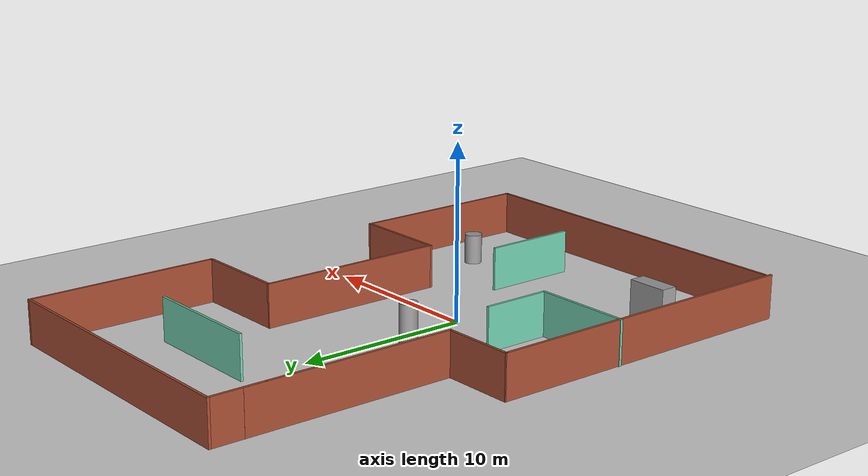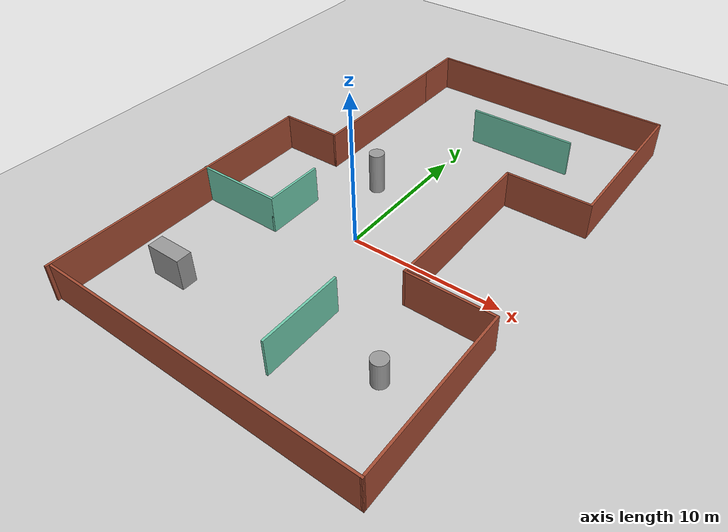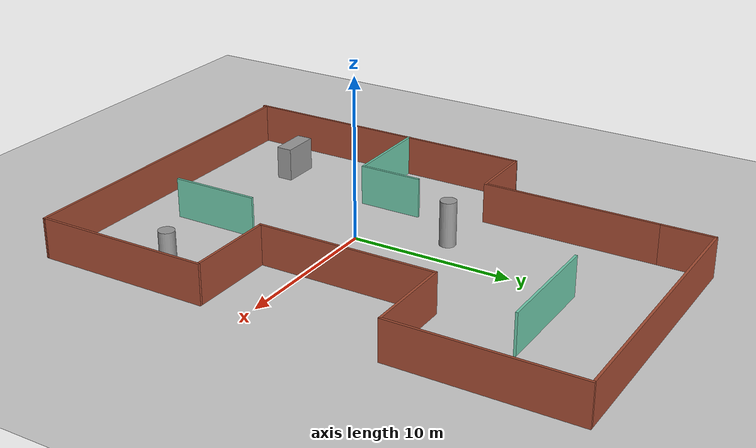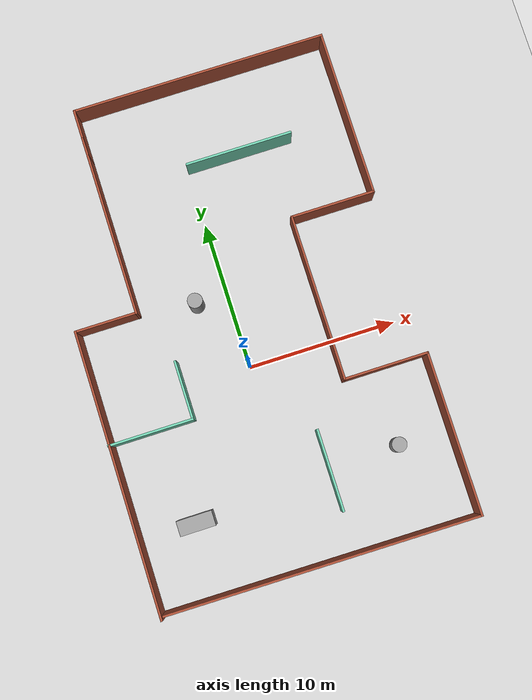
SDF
<sdf version="1.7">
 <world name="default">
  <light name="sun" type="directional">
   <pose>0 0 10 0 -0 0</pose>
   <diffuse>0.8 0.8 0.8 1</diffuse>
   <specular>0.2 0.2 0.2 1</specular>
   <attenuation>
    <range>1000</range>
    <constant>0.9</constant>
    <linear>0.01</linear>
    <quadratic>0.001</quadratic>
   </attenuation>
   <direction>-0.5 0.1 -0.9</direction>
   <spot><inner_angle>0</inner_angle><outer_angle>0</outer_angle><falloff>0</falloff></spot>
  </light>
  <model name="ground_plane">
   <static>1</static>
   <link name="link">
    <collision name="collision">
     <geometry><plane><normal>0 0 1</normal><size>100 100</size></plane></geometry>
     <surface>
      <contact><collide_bitmask>65535</collide_bitmask></contact>
      <friction><ode><mu>100</mu><mu2>50</mu2></ode></friction>
     </surface>
    </collision>
    <visual name="visual">
     <cast_shadows>0</cast_shadows>
     <geometry><plane><normal>0 0 1</normal><size>100 100</size></plane></geometry>
     <material>
      <script><uri>file://media/materials/scripts/gazebo.material</uri><name>Gazebo/Grey</name></script>
     </material>
    </visual>
   </link>
  </model>
  <gravity>0 0 -9.8</gravity>
  <magnetic_field>6e-06 2.3e-05 -4.2e-05</magnetic_field>
  <atmosphere type="adiabatic"/>
  <physics type="ode">
   <max_step_size>0.001</max_step_size>
   <real_time_factor>1</real_time_factor>
   <real_time_update_rate>1000</real_time_update_rate>
  </physics>
  <scene><ambient>0.4 0.4 0.4 1</ambient><background>0.7 0.7 0.7 1</background><shadows>1</shadows></scene>
  <spherical_coordinates>
   <surface_model>EARTH_WGS84</surface_model>
   <latitude_deg>0</latitude_deg>
   <longitude_deg>0</longitude_deg>
   <elevation>0</elevation>
   <heading_deg>0</heading_deg>
  </spherical_coordinates>
  <model name="bigHouse2">
   <pose>0.51957 2.93001 0 0 -0 0</pose>
   <link name="Wall_0">
    <collision name="Wall_0_Collision">
     <geometry><box><size>19.1938 0.15 2.5</size></box></geometry>
     <pose>0 0 1.25 0 -0 0</pose>
    </collision>
    <visual name="Wall_0_Visual">
     <pose>0 0 1.25 0 -0 0</pose>
     <geometry><box><size>19.1938 0.15 2.5</size></box></geometry>
     <material>
      <script><uri>file://media/materials/scripts/gazebo.material</uri><name>Gazebo/Bricks</name></script>
      <ambient>1 1 1 1</ambient>
     </material>
     <meta><layer>0</layer></meta>
    </visual>
    <pose>-10.5903 -7.02327 0 0 -0 1.56949</pose>
   </link>
   <link name="Wall_10">
    <collision name="Wall_10_Collision">
     <geometry><box><size>11.25 0.15 2.5</size></box></geometry>
     <pose>0 0 1.25 0 -0 0</pose>
    </collision>
    <visual name="Wall_10_Visual">
     <pose>0 0 1.25 0 -0 0</pose>
     <geometry><box><size>11.25 0.15 2.5</size></box></geometry>
     <material>
      <script><uri>file://media/materials/scripts/gazebo.material</uri><name>Gazebo/Bricks</name></script>
      <ambient>1 1 1 1</ambient>
     </material>
     <meta><layer>0</layer></meta>
    </visual>
    <pose>5.02426 -0.104723 0 0 -0 1.5708</pose>
   </link>
   <link name="Wall_11">
    <collision name="Wall_11_Collision">
     <geometry><box><size>5.75 0.15 2.5</size></box></geometry>
     <pose>0 0 1.25 0 -0 0</pose>
    </collision>
    <visual name="Wall_11_Visual">
     <pose>0 0 1.25 0 -0 0</pose>
     <geometry><box><size>5.75 0.15 2.5</size></box></geometry>
     <material>
      <script><uri>file://media/materials/scripts/gazebo.material</uri><name>Gazebo/Bricks</name></script>
      <ambient>1 1 1 1</ambient>
     </material>
     <meta><layer>0</layer></meta>
    </visual>
    <pose>7.82426 5.44528 0 0 -0 0</pose>
   </link>
   <link name="Wall_14">
    <collision name="Wall_14_Collision">
     <geometry><box><size>11.25 0.15 2.5</size></box></geometry>
     <pose>0 0 1.25 0 -0 0</pose>
    </collision>
    <visual name="Wall_14_Visual">
     <pose>0 0 1.25 0 -0 0</pose>
     <geometry><box><size>11.25 0.15 2.5</size></box></geometry>
     <material>
      <script><uri>file://media/materials/scripts/gazebo.material</uri><name>Gazebo/Bricks</name></script>
      <ambient>1 1 1 1</ambient>
     </material>
     <meta><layer>0</layer></meta>
    </visual>
    <pose>10.6243 10.9953 0 0 -0 1.5708</pose>
   </link>
   <link name="Wall_17">
    <collision name="Wall_17_Collision">
     <geometry><box><size>4.25 0.15 2.5</size></box></geometry>
     <pose>0 0 1.25 0 -0 0</pose>
    </collision>
    <visual name="Wall_17_Visual">
     <pose>0 0 1.25 0 -0 0</pose>
     <geometry><box><size>4.25 0.15 2.5</size></box></geometry>
     <material>
      <script><uri>file://media/materials/scripts/gazebo.material</uri><name>Gazebo/Bricks</name></script>
      <ambient>1 1 1 1</ambient>
     </material>
     <meta><layer>0</layer></meta>
    </visual>
    <pose>-8.52784 2.49865 0 0 -0 0</pose>
   </link>
   <link name="Wall_18">
    <collision name="Wall_18_Collision">
     <geometry><box><size>12.25 0.15 2.5</size></box></geometry>
     <pose>0 0 1.25 0 -0 0</pose>
    </collision>
    <visual name="Wall_18_Visual">
     <pose>0 0 1.25 0 -0 0</pose>
     <geometry><box><size>12.25 0.15 2.5</size></box></geometry>
     <material>
      <script><uri>file://media/materials/scripts/gazebo.material</uri><name>Gazebo/Bricks</name></script>
      <ambient>1 1 1 1</ambient>
     </material>
     <meta><layer>0</layer></meta>
    </visual>
    <pose>-6.47784 8.54865 0 0 -0 1.5708</pose>
   </link>
   <link name="Wall_20">
    <collision name="Wall_20_Collision">
     <geometry><box><size>17.25 0.15 2.5</size></box></geometry>
     <pose>0 0 1.25 0 -0 0</pose>
    </collision>
    <visual name="Wall_20_Visual">
     <pose>0 0 1.25 0 -0 0</pose>
     <geometry><box><size>17.25 0.15 2.5</size></box></geometry>
     <material>
      <script><uri>file://media/materials/scripts/gazebo.material</uri><name>Gazebo/Bricks</name></script>
      <ambient>1 1 1 1</ambient>
     </material>
     <meta><layer>0</layer></meta>
    </visual>
    <pose>2.07425 16.5453 0 0 -0 3.14159</pose>
   </link>
   <link name="Wall_21">
    <collision name="Wall_21_Collision">
     <geometry><box><size>3.25 0.15 2.5</size></box></geometry>
     <pose>0 0 1.25 0 -0 0</pose>
    </collision>
    <visual name="Wall_21_Visual">
     <pose>0 0 1.25 0 -0 0</pose>
     <geometry><box><size>3.25 0.15 2.5</size></box></geometry>
     <material>
      <script><uri>file://media/materials/scripts/gazebo.material</uri><name>Gazebo/Bricks</name></script>
      <ambient>1 1 1 1</ambient>
     </material>
     <meta><layer>0</layer></meta>
    </visual>
    <pose>-6.47574 14.9953 0 0 -0 -1.5708</pose>
   </link>
   <link name="Wall_23">
    <collision name="Wall_23_Collision">
     <geometry><box><size>5.75 0.15 2.5</size></box></geometry>
     <pose>0 0 1.25 0 -0 0</pose>
    </collision>
    <visual name="Wall_23_Visual">
     <pose>0 0 1.25 0 -0 0</pose>
     <geometry><box><size>5.75 0.15 2.5</size></box></geometry>
     <material>
      <script><uri>file://media/materials/scripts/gazebo.material</uri><name>Gazebo/Grey</name></script>
      <ambient>0.435294 0.796078 0.67451 1</ambient>
     </material>
     <meta><layer>0</layer></meta>
    </visual>
    <pose>-7.82478 -5.13857 0 0 -0 0</pose>
   </link>
   <link name="Wall_24">
    <collision name="Wall_24_Collision">
     <geometry><box><size>4 0.15 2.5</size></box></geometry>
     <pose>0 0 1.25 0 -0 0</pose>
    </collision>
    <visual name="Wall_24_Visual">
     <pose>0 0 1.25 0 -0 0</pose>
     <geometry><box><size>4 0.15 2.5</size></box></geometry>
     <material>
      <script><uri>file://media/materials/scripts/gazebo.material</uri><name>Gazebo/Grey</name></script>
      <ambient>0.435294 0.796078 0.67451 1</ambient>
     </material>
     <meta><layer>0</layer></meta>
    </visual>
    <pose>-5.02478 -3.21357 0 0 -0 1.5708</pose>
   </link>
   <link name="Wall_26">
    <collision name="Wall_26_Collision">
     <geometry><box><size>5.5 0.15 2.5</size></box></geometry>
     <pose>0 0 1.25 0 -0 0</pose>
    </collision>
    <visual name="Wall_26_Visual">
     <pose>0 0 1.25 0 -0 0</pose>
     <geometry><box><size>5.5 0.15 2.5</size></box></geometry>
     <material>
      <script><uri>file://media/materials/scripts/gazebo.material</uri><name>Gazebo/Grey</name></script>
      <ambient>0.435294 0.796078 0.67451 1</ambient>
     </material>
     <meta><layer>0</layer></meta>
    </visual>
    <pose>2.36207 -10.905 0 0 -0 1.5708</pose>
   </link>
   <link name="Wall_28">
    <collision name="Wall_28_Collision">
     <geometry><box><size>7.25 0.15 2.5</size></box></geometry>
     <pose>0 0 1.25 0 -0 0</pose>
    </collision>
    <visual name="Wall_28_Visual">
     <pose>0 0 1.25 0 -0 0</pose>
     <geometry><box><size>7.25 0.15 2.5</size></box></geometry>
     <material>
      <script><uri>file://media/materials/scripts/gazebo.material</uri><name>Gazebo/Grey</name></script>
      <ambient>0.435294 0.796078 0.67451 1</ambient>
     </material>
     <meta><layer>0</layer></meta>
    </visual>
    <pose>3.09825 10.8785 0 0 -0 0</pose>
   </link>
   <link name="Wall_3">
    <collision name="Wall_3_Collision">
     <geometry><box><size>21.1894 0.15 2.5</size></box></geometry>
     <pose>0 0 1.25 0 -0 0</pose>
    </collision>
    <visual name="Wall_3_Visual">
     <pose>0 0 1.25 0 -0 0</pose>
     <geometry><box><size>21.1894 0.15 2.5</size></box></geometry>
     <material>
      <script><uri>file://media/materials/scripts/gazebo.material</uri><name>Gazebo/Bricks</name></script>
      <ambient>1 1 1 1</ambient>
     </material>
     <meta><layer>0</layer></meta>
    </visual>
    <pose>0.104838 -16.4308 0 0 -0 -0.007023</pose>
   </link>
   <link name="Wall_6">
    <collision name="Wall_6_Collision">
     <geometry><box><size>11 0.15 2.5</size></box></geometry>
     <pose>0 0 1.25 0 -0 0</pose>
    </collision>
    <visual name="Wall_6_Visual">
     <pose>0 0 1.25 0 -0 0</pose>
     <geometry><box><size>11 0.15 2.5</size></box></geometry>
     <material>
      <script><uri>file://media/materials/scripts/gazebo.material</uri><name>Gazebo/Bricks</name></script>
      <ambient>1 1 1 1</ambient>
     </material>
     <meta><layer>0</layer></meta>
    </visual>
    <pose>10.6243 -11.0797 0 0 -0 1.5708</pose>
   </link>
   <link name="Wall_9">
    <collision name="Wall_9_Collision">
     <geometry><box><size>5.75 0.15 2.5</size></box></geometry>
     <pose>0 0 1.25 0 -0 0</pose>
    </collision>
    <visual name="Wall_9_Visual">
     <pose>0 0 1.25 0 -0 0</pose>
     <geometry><box><size>5.75 0.15 2.5</size></box></geometry>
     <material>
      <script><uri>file://media/materials/scripts/gazebo.material</uri><name>Gazebo/Bricks</name></script>
      <ambient>1 1 1 1</ambient>
     </material>
     <meta><layer>0</layer></meta>
    </visual>
    <pose>7.82426 -5.65472 0 0 -0 3.14159</pose>
   </link>
   <static>1</static>
  </model>
  <model name="unit_cylinder">
   <pose>-2.10556 4.99391 1.39596 0 0 -1.1e-05</pose>
   <link name="link">
    <inertial>
     <mass>1</mass>
     <inertia><ixx>0.145833</ixx><ixy>0</ixy><ixz>0</ixz><iyy>0.145833</iyy><iyz>0</iyz><izz>0.125</izz></inertia>
    </inertial>
    <collision name="collision">
     <geometry><cylinder><radius>0.5</radius><length>2.79194</length></cylinder></geometry>
    </collision>
    <visual name="visual">
     <geometry><cylinder><radius>0.5</radius><length>2.79194</length></cylinder></geometry>
     <material>
      <script><name>Gazebo/Grey</name><uri>file://media/materials/scripts/gazebo.material</uri></script>
     </material>
    </visual>
   </link>
  </model>
  <model name="unit_cylinder_0">
   <pose>7.64662 -7.77016 0.870733 0 -0 1e-06</pose>
   <link name="link">
    <inertial>
     <mass>1</mass>
     <inertia><ixx>0.145833</ixx><ixy>0</ixy><ixz>0</ixz><iyy>0.145833</iyy><iyz>0</iyz><izz>0.125</izz></inertia>
    </inertial>
    <collision name="collision">
     <geometry><cylinder><radius>0.5</radius><length>1.74147</length></cylinder></geometry>
    </collision>
    <visual name="visual">
     <geometry><cylinder><radius>0.5</radius><length>1.74147</length></cylinder></geometry>
     <material>
      <script><name>Gazebo/Grey</name><uri>file://media/materials/scripts/gazebo.material</uri></script>
     </material>
    </visual>
   </link>
  </model>
  <model name="unit_box">
   <pose>-6.28604 -8.56815 1.04821 -2e-06 0 0.000442</pose>
   <link name="link">
    <inertial>
     <mass>1</mass>
     <inertia>
      <ixx>0.166667</ixx>
      <ixy>0</ixy>
      <ixz>0</ixz>
      <iyy>0.166667</iyy>
      <iyz>0</iyz>
      <izz>0.166667</izz>
     </inertia>
    </inertial>
    <collision name="collision"><geometry><box><size>2.37132 1 2.09643</size></box></geometry></collision>
    <visual name="visual">
     <geometry><box><size>2.37132 1 2.09643</size></box></geometry>
     <material>
      <script><name>Gazebo/Grey</name><uri>file://media/materials/scripts/gazebo.material</uri></script>
     </material>
    </visual>
   </link>
  </model>
 </world>
</sdf>
